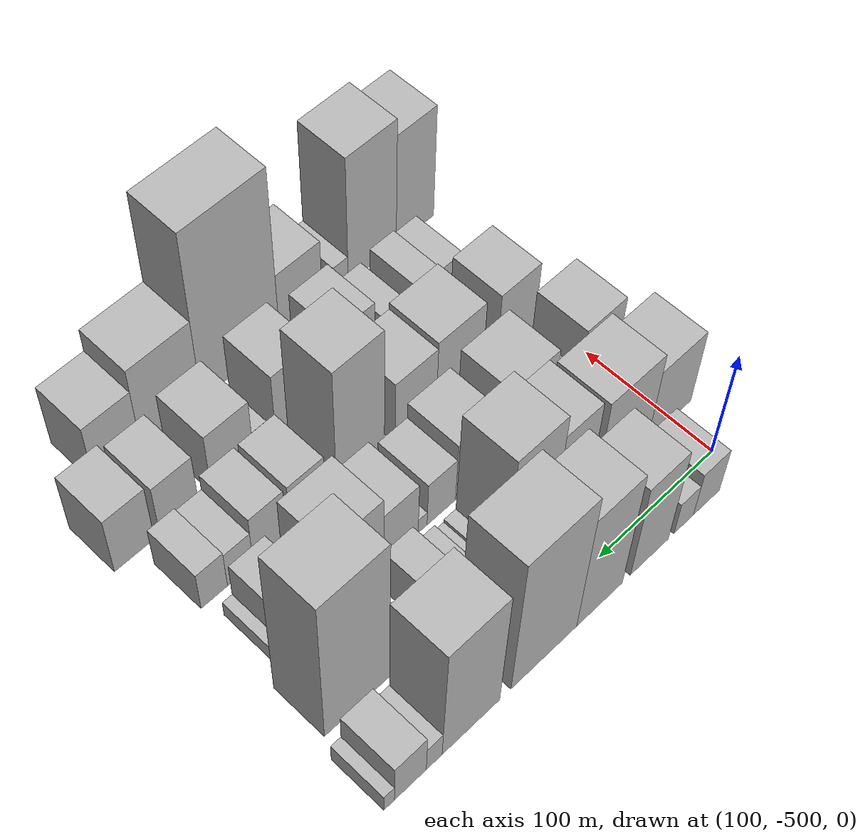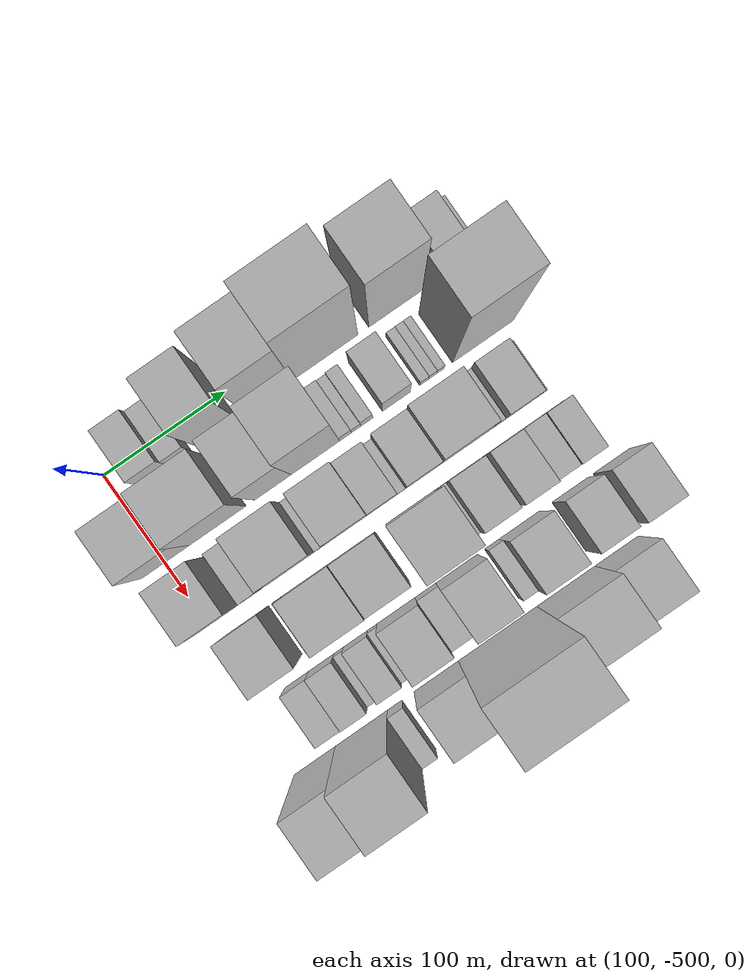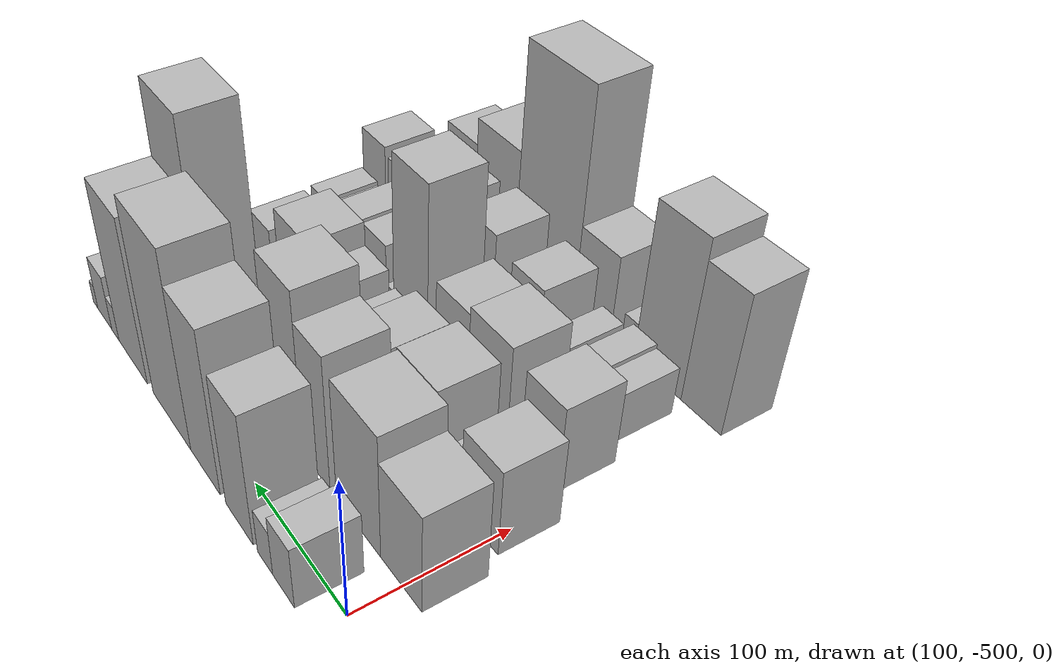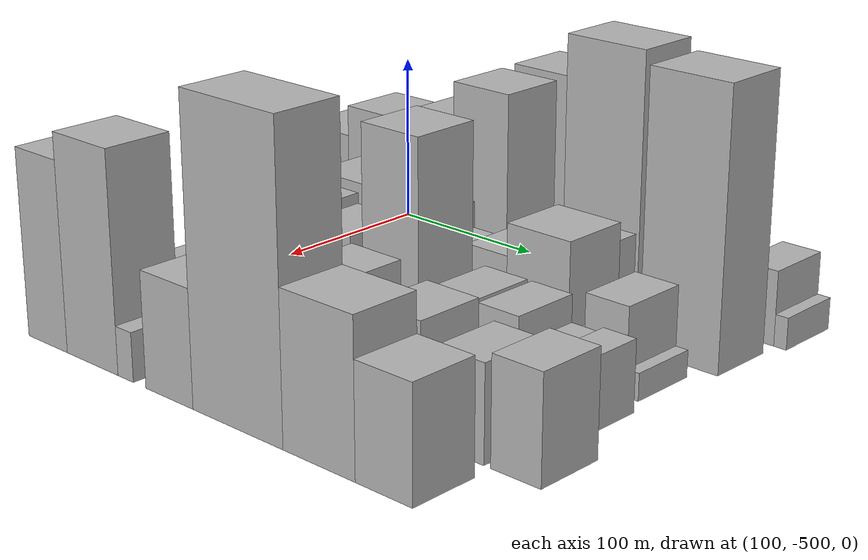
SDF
<sdf version="1.6">
 <world name="default">
  <model name="building_14">
   <static>1</static>
   <pose>100.0000 -470.5793 0 0.000000 0.000000 0.000000</pose>
   <link name="link">
    <pose>0 0 22.50 0 0 0</pose>
    <collision name="collision"><geometry><box><size>40.0000 23.4623 45.0000</size></box></geometry></collision>
    <visual name="visual">
     <cast_shadows>0</cast_shadows>
     <geometry><box><size>40.0000 23.4623 45.0000</size></box></geometry>
     <material>
      <script>
       <uri>model://HANNAS_wall/materials/scripts</uri>
       <uri>model://HANNAS_wall/materials/textures</uri>
       <name>vrc/HANNAS_wall</name>
      </script>
     </material>
    </visual>
   </link>
  </model>
  <model name="building_15">
   <static>1</static>
   <pose>100.0000 -450.2433 0 0.000000 0.000000 0.000000</pose>
   <link name="link">
    <pose>0 0 16.50 0 0 0</pose>
    <collision name="collision"><geometry><box><size>40.0000 17.2098 33.0000</size></box></geometry></collision>
    <visual name="visual">
     <cast_shadows>0</cast_shadows>
     <geometry><box><size>40.0000 17.2098 33.0000</size></box></geometry>
     <material>
      <script>
       <uri>model://HANNAS_wall/materials/scripts</uri>
       <uri>model://HANNAS_wall/materials/textures</uri>
       <name>vrc/HANNAS_wall</name>
      </script>
     </material>
    </visual>
   </link>
  </model>
  <model name="building_16">
   <static>1</static>
   <pose>100.0000 -420.1182 0 0.000000 0.000000 0.000000</pose>
   <link name="link">
    <pose>0 0 48.00 0 0 0</pose>
    <collision name="collision"><geometry><box><size>40.0000 33.0405 96.0000</size></box></geometry></collision>
    <visual name="visual">
     <cast_shadows>0</cast_shadows>
     <geometry><box><size>40.0000 33.0405 96.0000</size></box></geometry>
     <material>
      <script>
       <uri>model://HANNAS_wall/materials/scripts</uri>
       <uri>model://HANNAS_wall/materials/textures</uri>
       <name>vrc/HANNAS_wall</name>
      </script>
     </material>
    </visual>
   </link>
  </model>
  <model name="building_17">
   <static>1</static>
   <pose>100.0000 -377.3497 0 0.000000 0.000000 0.000000</pose>
   <link name="link">
    <pose>0 0 60.00 0 0 0</pose>
    <collision name="collision"><geometry><box><size>40.0000 38.4965 120.0000</size></box></geometry></collision>
    <visual name="visual">
     <cast_shadows>0</cast_shadows>
     <geometry><box><size>40.0000 38.4965 120.0000</size></box></geometry>
     <material>
      <script>
       <uri>model://HANNAS_wall/materials/scripts</uri>
       <uri>model://HANNAS_wall/materials/textures</uri>
       <name>vrc/HANNAS_wall</name>
      </script>
     </material>
    </visual>
   </link>
  </model>
  <model name="building_18">
   <static>1</static>
   <pose>100.0000 -331.2508 0 0.000000 0.000000 0.000000</pose>
   <link name="link">
    <pose>0 0 72.00 0 0 0</pose>
    <collision name="collision"><geometry><box><size>40.0000 53.7013 144.0000</size></box></geometry></collision>
    <visual name="visual">
     <cast_shadows>0</cast_shadows>
     <geometry><box><size>40.0000 53.7013 144.0000</size></box></geometry>
     <material>
      <script>
       <uri>model://HANNAS_wall/materials/scripts</uri>
       <uri>model://HANNAS_wall/materials/textures</uri>
       <name>vrc/HANNAS_wall</name>
      </script>
     </material>
    </visual>
   </link>
  </model>
  <model name="building_19">
   <static>1</static>
   <pose>100.0000 -272.8662 0 0.000000 0.000000 0.000000</pose>
   <link name="link">
    <pose>0 0 61.50 0 0 0</pose>
    <collision name="collision"><geometry><box><size>40.0000 45.0677 123.0000</size></box></geometry></collision>
    <visual name="visual">
     <cast_shadows>0</cast_shadows>
     <geometry><box><size>40.0000 45.0677 123.0000</size></box></geometry>
     <material>
      <script>
       <uri>model://HANNAS_wall/materials/scripts</uri>
       <uri>model://HANNAS_wall/materials/textures</uri>
       <name>vrc/HANNAS_wall</name>
      </script>
     </material>
    </visual>
   </link>
  </model>
  <model name="building_20">
   <static>1</static>
   <pose>100.0000 -244.2768 0 0.000000 0.000000 0.000000</pose>
   <link name="link">
    <pose>0 0 13.50 0 0 0</pose>
    <collision name="collision"><geometry><box><size>40.0000 12.1112 27.0000</size></box></geometry></collision>
    <visual name="visual">
     <cast_shadows>0</cast_shadows>
     <geometry><box><size>40.0000 12.1112 27.0000</size></box></geometry>
     <material>
      <script>
       <uri>model://HANNAS_wall/materials/scripts</uri>
       <uri>model://HANNAS_wall/materials/textures</uri>
       <name>vrc/HANNAS_wall</name>
      </script>
     </material>
    </visual>
   </link>
  </model>
  <model name="building_21">
   <static>1</static>
   <pose>100.0000 -226.2192 0 0.000000 0.000000 0.000000</pose>
   <link name="link">
    <pose>0 0 21.00 0 0 0</pose>
    <collision name="collision"><geometry><box><size>40.0000 24.0040 42.0000</size></box></geometry></collision>
    <visual name="visual">
     <cast_shadows>0</cast_shadows>
     <geometry><box><size>40.0000 24.0040 42.0000</size></box></geometry>
     <material>
      <script>
       <uri>model://HANNAS_wall/materials/scripts</uri>
       <uri>model://HANNAS_wall/materials/textures</uri>
       <name>vrc/HANNAS_wall</name>
      </script>
     </material>
    </visual>
   </link>
  </model>
  <model name="building_22">
   <static>1</static>
   <pose>100.0000 -210.3135 0 0.000000 0.000000 0.000000</pose>
   <link name="link">
    <pose>0 0 9.00 0 0 0</pose>
    <collision name="collision"><geometry><box><size>40.0000 7.8074 18.0000</size></box></geometry></collision>
    <visual name="visual">
     <cast_shadows>0</cast_shadows>
     <geometry><box><size>40.0000 7.8074 18.0000</size></box></geometry>
     <material>
      <script>
       <uri>model://HANNAS_wall/materials/scripts</uri>
       <uri>model://HANNAS_wall/materials/textures</uri>
       <name>vrc/HANNAS_wall</name>
      </script>
     </material>
    </visual>
   </link>
  </model>
  <model name="building_62">
   <static>1</static>
   <pose>152.0000 -498.5605 0 0.000000 0.000000 0.000000</pose>
   <link name="link">
    <pose>0 0 36.00 0 0 0</pose>
    <collision name="collision"><geometry><box><size>40.0000 39.4676 72.0000</size></box></geometry></collision>
    <visual name="visual">
     <cast_shadows>0</cast_shadows>
     <geometry><box><size>40.0000 39.4676 72.0000</size></box></geometry>
     <material>
      <script>
       <uri>model://HANNAS_wall/materials/scripts</uri>
       <uri>model://HANNAS_wall/materials/textures</uri>
       <name>vrc/HANNAS_wall</name>
      </script>
     </material>
    </visual>
   </link>
  </model>
  <model name="building_63">
   <static>1</static>
   <pose>152.0000 -455.6857 0 0.000000 0.000000 0.000000</pose>
   <link name="link">
    <pose>0 0 45.00 0 0 0</pose>
    <collision name="collision"><geometry><box><size>40.0000 46.2821 90.0000</size></box></geometry></collision>
    <visual name="visual">
     <cast_shadows>0</cast_shadows>
     <geometry><box><size>40.0000 46.2821 90.0000</size></box></geometry>
     <material>
      <script>
       <uri>model://HANNAS_wall/materials/scripts</uri>
       <uri>model://HANNAS_wall/materials/textures</uri>
       <name>vrc/HANNAS_wall</name>
      </script>
     </material>
    </visual>
   </link>
  </model>
  <model name="building_64">
   <static>1</static>
   <pose>152.0000 -410.3827 0 0.000000 0.000000 0.000000</pose>
   <link name="link">
    <pose>0 0 49.50 0 0 0</pose>
    <collision name="collision"><geometry><box><size>40.0000 30.3238 99.0000</size></box></geometry></collision>
    <visual name="visual">
     <cast_shadows>0</cast_shadows>
     <geometry><box><size>40.0000 30.3238 99.0000</size></box></geometry>
     <material>
      <script>
       <uri>model://HANNAS_wall/materials/scripts</uri>
       <uri>model://HANNAS_wall/materials/textures</uri>
       <name>vrc/HANNAS_wall</name>
      </script>
     </material>
    </visual>
   </link>
  </model>
  <model name="building_65">
   <static>1</static>
   <pose>152.0000 -375.3667 0 0.000000 0.000000 0.000000</pose>
   <link name="link">
    <pose>0 0 60.00 0 0 0</pose>
    <collision name="collision"><geometry><box><size>40.0000 39.7083 120.0000</size></box></geometry></collision>
    <visual name="visual">
     <cast_shadows>0</cast_shadows>
     <geometry><box><size>40.0000 39.7083 120.0000</size></box></geometry>
     <material>
      <script>
       <uri>model://HANNAS_wall/materials/scripts</uri>
       <uri>model://HANNAS_wall/materials/textures</uri>
       <name>vrc/HANNAS_wall</name>
      </script>
     </material>
    </visual>
   </link>
  </model>
  <model name="building_66">
   <static>1</static>
   <pose>152.0000 -350.6335 0 0.000000 0.000000 0.000000</pose>
   <link name="link">
    <pose>0 0 10.50 0 0 0</pose>
    <collision name="collision"><geometry><box><size>40.0000 9.7579 21.0000</size></box></geometry></collision>
    <visual name="visual">
     <cast_shadows>0</cast_shadows>
     <geometry><box><size>40.0000 9.7579 21.0000</size></box></geometry>
     <material>
      <script>
       <uri>model://HANNAS_wall/materials/scripts</uri>
       <uri>model://HANNAS_wall/materials/textures</uri>
       <name>vrc/HANNAS_wall</name>
      </script>
     </material>
    </visual>
   </link>
  </model>
  <model name="building_67">
   <static>1</static>
   <pose>152.0000 -341.9196 0 0.000000 0.000000 0.000000</pose>
   <link name="link">
    <pose>0 0 9.00 0 0 0</pose>
    <collision name="collision"><geometry><box><size>40.0000 7.6698 18.0000</size></box></geometry></collision>
    <visual name="visual">
     <cast_shadows>0</cast_shadows>
     <geometry><box><size>40.0000 7.6698 18.0000</size></box></geometry>
     <material>
      <script>
       <uri>model://HANNAS_wall/materials/scripts</uri>
       <uri>model://HANNAS_wall/materials/textures</uri>
       <name>vrc/HANNAS_wall</name>
      </script>
     </material>
    </visual>
   </link>
  </model>
  <model name="building_68">
   <static>1</static>
   <pose>152.0000 -333.2025 0 0.000000 0.000000 0.000000</pose>
   <link name="link">
    <pose>0 0 12.00 0 0 0</pose>
    <collision name="collision"><geometry><box><size>40.0000 9.7646 24.0000</size></box></geometry></collision>
    <visual name="visual">
     <cast_shadows>0</cast_shadows>
     <geometry><box><size>40.0000 9.7646 24.0000</size></box></geometry>
     <material>
      <script>
       <uri>model://HANNAS_wall/materials/scripts</uri>
       <uri>model://HANNAS_wall/materials/textures</uri>
       <name>vrc/HANNAS_wall</name>
      </script>
     </material>
    </visual>
   </link>
  </model>
  <model name="building_69">
   <static>1</static>
   <pose>152.0000 -308.9784 0 0.000000 0.000000 0.000000</pose>
   <link name="link">
    <pose>0 0 22.50 0 0 0</pose>
    <collision name="collision"><geometry><box><size>40.0000 22.6835 45.0000</size></box></geometry></collision>
    <visual name="visual">
     <cast_shadows>0</cast_shadows>
     <geometry><box><size>40.0000 22.6835 45.0000</size></box></geometry>
     <material>
      <script>
       <uri>model://HANNAS_wall/materials/scripts</uri>
       <uri>model://HANNAS_wall/materials/textures</uri>
       <name>vrc/HANNAS_wall</name>
      </script>
     </material>
    </visual>
   </link>
  </model>
  <model name="building_70">
   <static>1</static>
   <pose>152.0000 -286.0356 0 0.000000 0.000000 0.000000</pose>
   <link name="link">
    <pose>0 0 7.50 0 0 0</pose>
    <collision name="collision"><geometry><box><size>40.0000 7.2021 15.0000</size></box></geometry></collision>
    <visual name="visual">
     <cast_shadows>0</cast_shadows>
     <geometry><box><size>40.0000 7.2021 15.0000</size></box></geometry>
     <material>
      <script>
       <uri>model://HANNAS_wall/materials/scripts</uri>
       <uri>model://HANNAS_wall/materials/textures</uri>
       <name>vrc/HANNAS_wall</name>
      </script>
     </material>
    </visual>
   </link>
  </model>
  <model name="building_71">
   <static>1</static>
   <pose>152.0000 -279.1113 0 0.000000 0.000000 0.000000</pose>
   <link name="link">
    <pose>0 0 7.50 0 0 0</pose>
    <collision name="collision"><geometry><box><size>40.0000 6.6466 15.0000</size></box></geometry></collision>
    <visual name="visual">
     <cast_shadows>0</cast_shadows>
     <geometry><box><size>40.0000 6.6466 15.0000</size></box></geometry>
     <material>
      <script>
       <uri>model://HANNAS_wall/materials/scripts</uri>
       <uri>model://HANNAS_wall/materials/textures</uri>
       <name>vrc/HANNAS_wall</name>
      </script>
     </material>
    </visual>
   </link>
  </model>
  <model name="building_72">
   <static>1</static>
   <pose>152.0000 -272.7433 0 0.000000 0.000000 0.000000</pose>
   <link name="link">
    <pose>0 0 7.50 0 0 0</pose>
    <collision name="collision"><geometry><box><size>40.0000 6.0894 15.0000</size></box></geometry></collision>
    <visual name="visual">
     <cast_shadows>0</cast_shadows>
     <geometry><box><size>40.0000 6.0894 15.0000</size></box></geometry>
     <material>
      <script>
       <uri>model://HANNAS_wall/materials/scripts</uri>
       <uri>model://HANNAS_wall/materials/textures</uri>
       <name>vrc/HANNAS_wall</name>
      </script>
     </material>
    </visual>
   </link>
  </model>
  <model name="building_73">
   <static>1</static>
   <pose>152.0000 -237.7796 0 0.000000 0.000000 0.000000</pose>
   <link name="link">
    <pose>0 0 76.50 0 0 0</pose>
    <collision name="collision"><geometry><box><size>40.0000 49.8379 153.0000</size></box></geometry></collision>
    <visual name="visual">
     <cast_shadows>0</cast_shadows>
     <geometry><box><size>40.0000 49.8379 153.0000</size></box></geometry>
     <material>
      <script>
       <uri>model://HANNAS_wall/materials/scripts</uri>
       <uri>model://HANNAS_wall/materials/textures</uri>
       <name>vrc/HANNAS_wall</name>
      </script>
     </material>
    </visual>
   </link>
  </model>
  <model name="building_116">
   <static>1</static>
   <pose>204.0000 -492.7894 0 0.000000 0.000000 0.000000</pose>
   <link name="link">
    <pose>0 0 31.50 0 0 0</pose>
    <collision name="collision"><geometry><box><size>40.0000 34.4052 63.0000</size></box></geometry></collision>
    <visual name="visual">
     <cast_shadows>0</cast_shadows>
     <geometry><box><size>40.0000 34.4052 63.0000</size></box></geometry>
     <material>
      <script>
       <uri>model://HANNAS_wall/materials/scripts</uri>
       <uri>model://HANNAS_wall/materials/textures</uri>
       <name>vrc/HANNAS_wall</name>
      </script>
     </material>
    </visual>
   </link>
  </model>
  <model name="building_117">
   <static>1</static>
   <pose>204.0000 -463.0438 0 0.000000 0.000000 0.000000</pose>
   <link name="link">
    <pose>0 0 15.00 0 0 0</pose>
    <collision name="collision"><geometry><box><size>40.0000 15.0861 30.0000</size></box></geometry></collision>
    <visual name="visual">
     <cast_shadows>0</cast_shadows>
     <geometry><box><size>40.0000 15.0861 30.0000</size></box></geometry>
     <material>
      <script>
       <uri>model://HANNAS_wall/materials/scripts</uri>
       <uri>model://HANNAS_wall/materials/textures</uri>
       <name>vrc/HANNAS_wall</name>
      </script>
     </material>
    </visual>
   </link>
  </model>
  <model name="building_118">
   <static>1</static>
   <pose>204.0000 -431.4433 0 0.000000 0.000000 0.000000</pose>
   <link name="link">
    <pose>0 0 34.50 0 0 0</pose>
    <collision name="collision"><geometry><box><size>40.0000 40.1149 69.0000</size></box></geometry></collision>
    <visual name="visual">
     <cast_shadows>0</cast_shadows>
     <geometry><box><size>40.0000 40.1149 69.0000</size></box></geometry>
     <material>
      <script>
       <uri>model://HANNAS_wall/materials/scripts</uri>
       <uri>model://HANNAS_wall/materials/textures</uri>
       <name>vrc/HANNAS_wall</name>
      </script>
     </material>
    </visual>
   </link>
  </model>
  <model name="building_119">
   <static>1</static>
   <pose>204.0000 -407.1718 0 0.000000 0.000000 0.000000</pose>
   <link name="link">
    <pose>0 0 9.00 0 0 0</pose>
    <collision name="collision"><geometry><box><size>40.0000 8.4279 18.0000</size></box></geometry></collision>
    <visual name="visual">
     <cast_shadows>0</cast_shadows>
     <geometry><box><size>40.0000 8.4279 18.0000</size></box></geometry>
     <material>
      <script>
       <uri>model://HANNAS_wall/materials/scripts</uri>
       <uri>model://HANNAS_wall/materials/textures</uri>
       <name>vrc/HANNAS_wall</name>
      </script>
     </material>
    </visual>
   </link>
  </model>
  <model name="building_120">
   <static>1</static>
   <pose>204.0000 -385.6844 0 0.000000 0.000000 0.000000</pose>
   <link name="link">
    <pose>0 0 30.00 0 0 0</pose>
    <collision name="collision"><geometry><box><size>40.0000 34.5470 60.0000</size></box></geometry></collision>
    <visual name="visual">
     <cast_shadows>0</cast_shadows>
     <geometry><box><size>40.0000 34.5470 60.0000</size></box></geometry>
     <material>
      <script>
       <uri>model://HANNAS_wall/materials/scripts</uri>
       <uri>model://HANNAS_wall/materials/textures</uri>
       <name>vrc/HANNAS_wall</name>
      </script>
     </material>
    </visual>
   </link>
  </model>
  <model name="building_121">
   <static>1</static>
   <pose>204.0000 -356.6368 0 0.000000 0.000000 0.000000</pose>
   <link name="link">
    <pose>0 0 22.50 0 0 0</pose>
    <collision name="collision"><geometry><box><size>40.0000 23.5482 45.0000</size></box></geometry></collision>
    <visual name="visual">
     <cast_shadows>0</cast_shadows>
     <geometry><box><size>40.0000 23.5482 45.0000</size></box></geometry>
     <material>
      <script>
       <uri>model://HANNAS_wall/materials/scripts</uri>
       <uri>model://HANNAS_wall/materials/textures</uri>
       <name>vrc/HANNAS_wall</name>
      </script>
     </material>
    </visual>
   </link>
  </model>
  <model name="building_122">
   <static>1</static>
   <pose>204.0000 -341.2113 0 0.000000 0.000000 0.000000</pose>
   <link name="link">
    <pose>0 0 7.50 0 0 0</pose>
    <collision name="collision"><geometry><box><size>40.0000 7.3028 15.0000</size></box></geometry></collision>
    <visual name="visual">
     <cast_shadows>0</cast_shadows>
     <geometry><box><size>40.0000 7.3028 15.0000</size></box></geometry>
     <material>
      <script>
       <uri>model://HANNAS_wall/materials/scripts</uri>
       <uri>model://HANNAS_wall/materials/textures</uri>
       <name>vrc/HANNAS_wall</name>
      </script>
     </material>
    </visual>
   </link>
  </model>
  <model name="building_123">
   <static>1</static>
   <pose>204.0000 -323.6650 0 0.000000 0.000000 0.000000</pose>
   <link name="link">
    <pose>0 0 27.00 0 0 0</pose>
    <collision name="collision"><geometry><box><size>40.0000 27.7899 54.0000</size></box></geometry></collision>
    <visual name="visual">
     <cast_shadows>0</cast_shadows>
     <geometry><box><size>40.0000 27.7899 54.0000</size></box></geometry>
     <material>
      <script>
       <uri>model://HANNAS_wall/materials/scripts</uri>
       <uri>model://HANNAS_wall/materials/textures</uri>
       <name>vrc/HANNAS_wall</name>
      </script>
     </material>
    </visual>
   </link>
  </model>
  <model name="building_124">
   <static>1</static>
   <pose>204.0000 -289.0893 0 0.000000 0.000000 0.000000</pose>
   <link name="link">
    <pose>0 0 36.00 0 0 0</pose>
    <collision name="collision"><geometry><box><size>40.0000 41.3615 72.0000</size></box></geometry></collision>
    <visual name="visual">
     <cast_shadows>0</cast_shadows>
     <geometry><box><size>40.0000 41.3615 72.0000</size></box></geometry>
     <material>
      <script>
       <uri>model://HANNAS_wall/materials/scripts</uri>
       <uri>model://HANNAS_wall/materials/textures</uri>
       <name>vrc/HANNAS_wall</name>
      </script>
     </material>
    </visual>
   </link>
  </model>
  <model name="building_125">
   <static>1</static>
   <pose>204.0000 -263.1681 0 0.000000 0.000000 0.000000</pose>
   <link name="link">
    <pose>0 0 12.00 0 0 0</pose>
    <collision name="collision"><geometry><box><size>40.0000 10.4809 24.0000</size></box></geometry></collision>
    <visual name="visual">
     <cast_shadows>0</cast_shadows>
     <geometry><box><size>40.0000 10.4809 24.0000</size></box></geometry>
     <material>
      <script>
       <uri>model://HANNAS_wall/materials/scripts</uri>
       <uri>model://HANNAS_wall/materials/textures</uri>
       <name>vrc/HANNAS_wall</name>
      </script>
     </material>
    </visual>
   </link>
  </model>
  <model name="building_126">
   <static>1</static>
   <pose>204.0000 -244.3895 0 0.000000 0.000000 0.000000</pose>
   <link name="link">
    <pose>0 0 24.00 0 0 0</pose>
    <collision name="collision"><geometry><box><size>40.0000 27.0763 48.0000</size></box></geometry></collision>
    <visual name="visual">
     <cast_shadows>0</cast_shadows>
     <geometry><box><size>40.0000 27.0763 48.0000</size></box></geometry>
     <material>
      <script>
       <uri>model://HANNAS_wall/materials/scripts</uri>
       <uri>model://HANNAS_wall/materials/textures</uri>
       <name>vrc/HANNAS_wall</name>
      </script>
     </material>
    </visual>
   </link>
  </model>
  <model name="building_127">
   <static>1</static>
   <pose>204.0000 -227.1073 0 0.000000 0.000000 0.000000</pose>
   <link name="link">
    <pose>0 0 7.50 0 0 0</pose>
    <collision name="collision"><geometry><box><size>40.0000 7.4881 15.0000</size></box></geometry></collision>
    <visual name="visual">
     <cast_shadows>0</cast_shadows>
     <geometry><box><size>40.0000 7.4881 15.0000</size></box></geometry>
     <material>
      <script>
       <uri>model://HANNAS_wall/materials/scripts</uri>
       <uri>model://HANNAS_wall/materials/textures</uri>
       <name>vrc/HANNAS_wall</name>
      </script>
     </material>
    </visual>
   </link>
  </model>
  <model name="building_169">
   <static>1</static>
   <pose>256.0000 -475.7329 0 0.000000 0.000000 0.000000</pose>
   <link name="link">
    <pose>0 0 31.50 0 0 0</pose>
    <collision name="collision"><geometry><box><size>40.0000 34.1055 63.0000</size></box></geometry></collision>
    <visual name="visual">
     <cast_shadows>0</cast_shadows>
     <geometry><box><size>40.0000 34.1055 63.0000</size></box></geometry>
     <material>
      <script>
       <uri>model://HANNAS_wall/materials/scripts</uri>
       <uri>model://HANNAS_wall/materials/textures</uri>
       <name>vrc/HANNAS_wall</name>
      </script>
     </material>
    </visual>
   </link>
  </model>
  <model name="building_170">
   <static>1</static>
   <pose>256.0000 -449.7583 0 0.000000 0.000000 0.000000</pose>
   <link name="link">
    <pose>0 0 9.00 0 0 0</pose>
    <collision name="collision"><geometry><box><size>40.0000 7.8437 18.0000</size></box></geometry></collision>
    <visual name="visual">
     <cast_shadows>0</cast_shadows>
     <geometry><box><size>40.0000 7.8437 18.0000</size></box></geometry>
     <material>
      <script>
       <uri>model://HANNAS_wall/materials/scripts</uri>
       <uri>model://HANNAS_wall/materials/textures</uri>
       <name>vrc/HANNAS_wall</name>
      </script>
     </material>
    </visual>
   </link>
  </model>
  <model name="building_171">
   <static>1</static>
   <pose>256.0000 -425.7415 0 0.000000 0.000000 0.000000</pose>
   <link name="link">
    <pose>0 0 34.50 0 0 0</pose>
    <collision name="collision"><geometry><box><size>40.0000 40.1898 69.0000</size></box></geometry></collision>
    <visual name="visual">
     <cast_shadows>0</cast_shadows>
     <geometry><box><size>40.0000 40.1898 69.0000</size></box></geometry>
     <material>
      <script>
       <uri>model://HANNAS_wall/materials/scripts</uri>
       <uri>model://HANNAS_wall/materials/textures</uri>
       <name>vrc/HANNAS_wall</name>
      </script>
     </material>
    </visual>
   </link>
  </model>
  <model name="building_172">
   <static>1</static>
   <pose>256.0000 -388.2916 0 0.000000 0.000000 0.000000</pose>
   <link name="link">
    <pose>0 0 31.50 0 0 0</pose>
    <collision name="collision"><geometry><box><size>40.0000 34.7100 63.0000</size></box></geometry></collision>
    <visual name="visual">
     <cast_shadows>0</cast_shadows>
     <geometry><box><size>40.0000 34.7100 63.0000</size></box></geometry>
     <material>
      <script>
       <uri>model://HANNAS_wall/materials/scripts</uri>
       <uri>model://HANNAS_wall/materials/textures</uri>
       <name>vrc/HANNAS_wall</name>
      </script>
     </material>
    </visual>
   </link>
  </model>
  <model name="building_173">
   <static>1</static>
   <pose>256.0000 -342.3351 0 0.000000 0.000000 0.000000</pose>
   <link name="link">
    <pose>0 0 63.00 0 0 0</pose>
    <collision name="collision"><geometry><box><size>40.0000 39.2031 126.0000</size></box></geometry></collision>
    <visual name="visual">
     <cast_shadows>0</cast_shadows>
     <geometry><box><size>40.0000 39.2031 126.0000</size></box></geometry>
     <material>
      <script>
       <uri>model://HANNAS_wall/materials/scripts</uri>
       <uri>model://HANNAS_wall/materials/textures</uri>
       <name>vrc/HANNAS_wall</name>
      </script>
     </material>
    </visual>
   </link>
  </model>
  <model name="building_174">
   <static>1</static>
   <pose>256.0000 -318.3055 0 0.000000 0.000000 0.000000</pose>
   <link name="link">
    <pose>0 0 10.50 0 0 0</pose>
    <collision name="collision"><geometry><box><size>40.0000 8.8560 21.0000</size></box></geometry></collision>
    <visual name="visual">
     <cast_shadows>0</cast_shadows>
     <geometry><box><size>40.0000 8.8560 21.0000</size></box></geometry>
     <material>
      <script>
       <uri>model://HANNAS_wall/materials/scripts</uri>
       <uri>model://HANNAS_wall/materials/textures</uri>
       <name>vrc/HANNAS_wall</name>
      </script>
     </material>
    </visual>
   </link>
  </model>
  <model name="building_175">
   <static>1</static>
   <pose>256.0000 -299.7712 0 0.000000 0.000000 0.000000</pose>
   <link name="link">
    <pose>0 0 25.50 0 0 0</pose>
    <collision name="collision"><geometry><box><size>40.0000 28.2126 51.0000</size></box></geometry></collision>
    <visual name="visual">
     <cast_shadows>0</cast_shadows>
     <geometry><box><size>40.0000 28.2126 51.0000</size></box></geometry>
     <material>
      <script>
       <uri>model://HANNAS_wall/materials/scripts</uri>
       <uri>model://HANNAS_wall/materials/textures</uri>
       <name>vrc/HANNAS_wall</name>
      </script>
     </material>
    </visual>
   </link>
  </model>
  <model name="building_176">
   <static>1</static>
   <pose>256.0000 -269.6560 0 0.000000 0.000000 0.000000</pose>
   <link name="link">
    <pose>0 0 25.50 0 0 0</pose>
    <collision name="collision"><geometry><box><size>40.0000 26.0177 51.0000</size></box></geometry></collision>
    <visual name="visual">
     <cast_shadows>0</cast_shadows>
     <geometry><box><size>40.0000 26.0177 51.0000</size></box></geometry>
     <material>
      <script>
       <uri>model://HANNAS_wall/materials/scripts</uri>
       <uri>model://HANNAS_wall/materials/textures</uri>
       <name>vrc/HANNAS_wall</name>
      </script>
     </material>
    </visual>
   </link>
  </model>
  <model name="building_177">
   <static>1</static>
   <pose>256.0000 -246.7522 0 0.000000 0.000000 0.000000</pose>
   <link name="link">
    <pose>0 0 18.00 0 0 0</pose>
    <collision name="collision"><geometry><box><size>40.0000 19.7899 36.0000</size></box></geometry></collision>
    <visual name="visual">
     <cast_shadows>0</cast_shadows>
     <geometry><box><size>40.0000 19.7899 36.0000</size></box></geometry>
     <material>
      <script>
       <uri>model://HANNAS_wall/materials/scripts</uri>
       <uri>model://HANNAS_wall/materials/textures</uri>
       <name>vrc/HANNAS_wall</name>
      </script>
     </material>
    </visual>
   </link>
  </model>
  <model name="building_178">
   <static>1</static>
   <pose>256.0000 -226.8342 0 0.000000 0.000000 0.000000</pose>
   <link name="link">
    <pose>0 0 19.50 0 0 0</pose>
    <collision name="collision"><geometry><box><size>40.0000 20.0461 39.0000</size></box></geometry></collision>
    <visual name="visual">
     <cast_shadows>0</cast_shadows>
     <geometry><box><size>40.0000 20.0461 39.0000</size></box></geometry>
     <material>
      <script>
       <uri>model://HANNAS_wall/materials/scripts</uri>
       <uri>model://HANNAS_wall/materials/textures</uri>
       <name>vrc/HANNAS_wall</name>
      </script>
     </material>
    </visual>
   </link>
  </model>
  <model name="building_218">
   <static>1</static>
   <pose>308.0000 -471.3192 0 0.000000 0.000000 0.000000</pose>
   <link name="link">
    <pose>0 0 18.00 0 0 0</pose>
    <collision name="collision"><geometry><box><size>40.0000 19.6863 36.0000</size></box></geometry></collision>
    <visual name="visual">
     <cast_shadows>0</cast_shadows>
     <geometry><box><size>40.0000 19.6863 36.0000</size></box></geometry>
     <material>
      <script>
       <uri>model://HANNAS_wall/materials/scripts</uri>
       <uri>model://HANNAS_wall/materials/textures</uri>
       <name>vrc/HANNAS_wall</name>
      </script>
     </material>
    </visual>
   </link>
  </model>
  <model name="building_219">
   <static>1</static>
   <pose>308.0000 -451.1763 0 0.000000 0.000000 0.000000</pose>
   <link name="link">
    <pose>0 0 19.50 0 0 0</pose>
    <collision name="collision"><geometry><box><size>40.0000 20.5996 39.0000</size></box></geometry></collision>
    <visual name="visual">
     <cast_shadows>0</cast_shadows>
     <geometry><box><size>40.0000 20.5996 39.0000</size></box></geometry>
     <material>
      <script>
       <uri>model://HANNAS_wall/materials/scripts</uri>
       <uri>model://HANNAS_wall/materials/textures</uri>
       <name>vrc/HANNAS_wall</name>
      </script>
     </material>
    </visual>
   </link>
  </model>
  <model name="building_220">
   <static>1</static>
   <pose>308.0000 -436.9733 0 0.000000 0.000000 0.000000</pose>
   <link name="link">
    <pose>0 0 9.00 0 0 0</pose>
    <collision name="collision"><geometry><box><size>40.0000 7.8064 18.0000</size></box></geometry></collision>
    <visual name="visual">
     <cast_shadows>0</cast_shadows>
     <geometry><box><size>40.0000 7.8064 18.0000</size></box></geometry>
     <material>
      <script>
       <uri>model://HANNAS_wall/materials/scripts</uri>
       <uri>model://HANNAS_wall/materials/textures</uri>
       <name>vrc/HANNAS_wall</name>
      </script>
     </material>
    </visual>
   </link>
  </model>
  <model name="building_221">
   <static>1</static>
   <pose>308.0000 -423.2968 0 0.000000 0.000000 0.000000</pose>
   <link name="link">
    <pose>0 0 16.50 0 0 0</pose>
    <collision name="collision"><geometry><box><size>40.0000 19.5466 33.0000</size></box></geometry></collision>
    <visual name="visual">
     <cast_shadows>0</cast_shadows>
     <geometry><box><size>40.0000 19.5466 33.0000</size></box></geometry>
     <material>
      <script>
       <uri>model://HANNAS_wall/materials/scripts</uri>
       <uri>model://HANNAS_wall/materials/textures</uri>
       <name>vrc/HANNAS_wall</name>
      </script>
     </material>
    </visual>
   </link>
  </model>
  <model name="building_222">
   <static>1</static>
   <pose>308.0000 -409.6398 0 0.000000 0.000000 0.000000</pose>
   <link name="link">
    <pose>0 0 9.00 0 0 0</pose>
    <collision name="collision"><geometry><box><size>40.0000 7.7675 18.0000</size></box></geometry></collision>
    <visual name="visual">
     <cast_shadows>0</cast_shadows>
     <geometry><box><size>40.0000 7.7675 18.0000</size></box></geometry>
     <material>
      <script>
       <uri>model://HANNAS_wall/materials/scripts</uri>
       <uri>model://HANNAS_wall/materials/textures</uri>
       <name>vrc/HANNAS_wall</name>
      </script>
     </material>
    </visual>
   </link>
  </model>
  <model name="building_223">
   <static>1</static>
   <pose>308.0000 -389.9407 0 0.000000 0.000000 0.000000</pose>
   <link name="link">
    <pose>0 0 28.50 0 0 0</pose>
    <collision name="collision"><geometry><box><size>40.0000 31.6306 57.0000</size></box></geometry></collision>
    <visual name="visual">
     <cast_shadows>0</cast_shadows>
     <geometry><box><size>40.0000 31.6306 57.0000</size></box></geometry>
     <material>
      <script>
       <uri>model://HANNAS_wall/materials/scripts</uri>
       <uri>model://HANNAS_wall/materials/textures</uri>
       <name>vrc/HANNAS_wall</name>
      </script>
     </material>
    </visual>
   </link>
  </model>
  <model name="building_224">
   <static>1</static>
   <pose>308.0000 -365.6707 0 0.000000 0.000000 0.000000</pose>
   <link name="link">
    <pose>0 0 15.00 0 0 0</pose>
    <collision name="collision"><geometry><box><size>40.0000 16.9094 30.0000</size></box></geometry></collision>
    <visual name="visual">
     <cast_shadows>0</cast_shadows>
     <geometry><box><size>40.0000 16.9094 30.0000</size></box></geometry>
     <material>
      <script>
       <uri>model://HANNAS_wall/materials/scripts</uri>
       <uri>model://HANNAS_wall/materials/textures</uri>
       <name>vrc/HANNAS_wall</name>
      </script>
     </material>
    </visual>
   </link>
  </model>
  <model name="building_225">
   <static>1</static>
   <pose>308.0000 -340.0623 0 0.000000 0.000000 0.000000</pose>
   <link name="link">
    <pose>0 0 33.00 0 0 0</pose>
    <collision name="collision"><geometry><box><size>40.0000 34.3075 66.0000</size></box></geometry></collision>
    <visual name="visual">
     <cast_shadows>0</cast_shadows>
     <geometry><box><size>40.0000 34.3075 66.0000</size></box></geometry>
     <material>
      <script>
       <uri>model://HANNAS_wall/materials/scripts</uri>
       <uri>model://HANNAS_wall/materials/textures</uri>
       <name>vrc/HANNAS_wall</name>
      </script>
     </material>
    </visual>
   </link>
  </model>
  <model name="building_226">
   <static>1</static>
   <pose>308.0000 -311.0226 0 0.000000 0.000000 0.000000</pose>
   <link name="link">
    <pose>0 0 13.50 0 0 0</pose>
    <collision name="collision"><geometry><box><size>40.0000 11.7720 27.0000</size></box></geometry></collision>
    <visual name="visual">
     <cast_shadows>0</cast_shadows>
     <geometry><box><size>40.0000 11.7720 27.0000</size></box></geometry>
     <material>
      <script>
       <uri>model://HANNAS_wall/materials/scripts</uri>
       <uri>model://HANNAS_wall/materials/textures</uri>
       <name>vrc/HANNAS_wall</name>
      </script>
     </material>
    </visual>
   </link>
  </model>
  <model name="building_227">
   <static>1</static>
   <pose>308.0000 -288.2669 0 0.000000 0.000000 0.000000</pose>
   <link name="link">
    <pose>0 0 30.00 0 0 0</pose>
    <collision name="collision"><geometry><box><size>40.0000 33.7393 60.0000</size></box></geometry></collision>
    <visual name="visual">
     <cast_shadows>0</cast_shadows>
     <geometry><box><size>40.0000 33.7393 60.0000</size></box></geometry>
     <material>
      <script>
       <uri>model://HANNAS_wall/materials/scripts</uri>
       <uri>model://HANNAS_wall/materials/textures</uri>
       <name>vrc/HANNAS_wall</name>
      </script>
     </material>
    </visual>
   </link>
  </model>
  <model name="building_228">
   <static>1</static>
   <pose>308.0000 -246.4530 0 0.000000 0.000000 0.000000</pose>
   <link name="link">
    <pose>0 0 25.50 0 0 0</pose>
    <collision name="collision"><geometry><box><size>40.0000 29.8887 51.0000</size></box></geometry></collision>
    <visual name="visual">
     <cast_shadows>0</cast_shadows>
     <geometry><box><size>40.0000 29.8887 51.0000</size></box></geometry>
     <material>
      <script>
       <uri>model://HANNAS_wall/materials/scripts</uri>
       <uri>model://HANNAS_wall/materials/textures</uri>
       <name>vrc/HANNAS_wall</name>
      </script>
     </material>
    </visual>
   </link>
  </model>
  <model name="building_229">
   <static>1</static>
   <pose>308.0000 -212.4474 0 0.000000 0.000000 0.000000</pose>
   <link name="link">
    <pose>0 0 28.50 0 0 0</pose>
    <collision name="collision"><geometry><box><size>40.0000 30.1225 57.0000</size></box></geometry></collision>
    <visual name="visual">
     <cast_shadows>0</cast_shadows>
     <geometry><box><size>40.0000 30.1225 57.0000</size></box></geometry>
     <material>
      <script>
       <uri>model://HANNAS_wall/materials/scripts</uri>
       <uri>model://HANNAS_wall/materials/textures</uri>
       <name>vrc/HANNAS_wall</name>
      </script>
     </material>
    </visual>
   </link>
  </model>
  <model name="building_274">
   <static>1</static>
   <pose>360.0000 -492.8565 0 0.000000 0.000000 0.000000</pose>
   <link name="link">
    <pose>0 0 52.50 0 0 0</pose>
    <collision name="collision"><geometry><box><size>40.0000 33.7903 105.0000</size></box></geometry></collision>
    <visual name="visual">
     <cast_shadows>0</cast_shadows>
     <geometry><box><size>40.0000 33.7903 105.0000</size></box></geometry>
     <material>
      <script>
       <uri>model://HANNAS_wall/materials/scripts</uri>
       <uri>model://HANNAS_wall/materials/textures</uri>
       <name>vrc/HANNAS_wall</name>
      </script>
     </material>
    </visual>
   </link>
  </model>
  <model name="building_275">
   <static>1</static>
   <pose>360.0000 -454.6950 0 0.000000 0.000000 0.000000</pose>
   <link name="link">
    <pose>0 0 60.00 0 0 0</pose>
    <collision name="collision"><geometry><box><size>40.0000 42.5326 120.0000</size></box></geometry></collision>
    <visual name="visual">
     <cast_shadows>0</cast_shadows>
     <geometry><box><size>40.0000 42.5326 120.0000</size></box></geometry>
     <material>
      <script>
       <uri>model://HANNAS_wall/materials/scripts</uri>
       <uri>model://HANNAS_wall/materials/textures</uri>
       <name>vrc/HANNAS_wall</name>
      </script>
     </material>
    </visual>
   </link>
  </model>
  <model name="building_276">
   <static>1</static>
   <pose>360.0000 -427.2458 0 0.000000 0.000000 0.000000</pose>
   <link name="link">
    <pose>0 0 13.50 0 0 0</pose>
    <collision name="collision"><geometry><box><size>40.0000 12.3660 27.0000</size></box></geometry></collision>
    <visual name="visual">
     <cast_shadows>0</cast_shadows>
     <geometry><box><size>40.0000 12.3660 27.0000</size></box></geometry>
     <material>
      <script>
       <uri>model://HANNAS_wall/materials/scripts</uri>
       <uri>model://HANNAS_wall/materials/textures</uri>
       <name>vrc/HANNAS_wall</name>
      </script>
     </material>
    </visual>
   </link>
  </model>
  <model name="building_277">
   <static>1</static>
   <pose>360.0000 -392.8661 0 0.000000 0.000000 0.000000</pose>
   <link name="link">
    <pose>0 0 31.50 0 0 0</pose>
    <collision name="collision"><geometry><box><size>40.0000 36.3933 63.0000</size></box></geometry></collision>
    <visual name="visual">
     <cast_shadows>0</cast_shadows>
     <geometry><box><size>40.0000 36.3933 63.0000</size></box></geometry>
     <material>
      <script>
       <uri>model://HANNAS_wall/materials/scripts</uri>
       <uri>model://HANNAS_wall/materials/textures</uri>
       <name>vrc/HANNAS_wall</name>
      </script>
     </material>
    </visual>
   </link>
  </model>
  <model name="building_278">
   <static>1</static>
   <pose>360.0000 -342.3325 0 0.000000 0.000000 0.000000</pose>
   <link name="link">
    <pose>0 0 81.00 0 0 0</pose>
    <collision name="collision"><geometry><box><size>40.0000 64.6739 162.0000</size></box></geometry></collision>
    <visual name="visual">
     <cast_shadows>0</cast_shadows>
     <geometry><box><size>40.0000 64.6739 162.0000</size></box></geometry>
     <material>
      <script>
       <uri>model://HANNAS_wall/materials/scripts</uri>
       <uri>model://HANNAS_wall/materials/textures</uri>
       <name>vrc/HANNAS_wall</name>
      </script>
     </material>
    </visual>
   </link>
  </model>
  <model name="building_279">
   <static>1</static>
   <pose>360.0000 -286.0972 0 0.000000 0.000000 0.000000</pose>
   <link name="link">
    <pose>0 0 40.50 0 0 0</pose>
    <collision name="collision"><geometry><box><size>40.0000 47.7967 81.0000</size></box></geometry></collision>
    <visual name="visual">
     <cast_shadows>0</cast_shadows>
     <geometry><box><size>40.0000 47.7967 81.0000</size></box></geometry>
     <material>
      <script>
       <uri>model://HANNAS_wall/materials/scripts</uri>
       <uri>model://HANNAS_wall/materials/textures</uri>
       <name>vrc/HANNAS_wall</name>
      </script>
     </material>
    </visual>
   </link>
  </model>
  <model name="building_280">
   <static>1</static>
   <pose>360.0000 -244.3498 0 0.000000 0.000000 0.000000</pose>
   <link name="link">
    <pose>0 0 30.00 0 0 0</pose>
    <collision name="collision"><geometry><box><size>40.0000 35.6981 60.0000</size></box></geometry></collision>
    <visual name="visual">
     <cast_shadows>0</cast_shadows>
     <geometry><box><size>40.0000 35.6981 60.0000</size></box></geometry>
     <material>
      <script>
       <uri>model://HANNAS_wall/materials/scripts</uri>
       <uri>model://HANNAS_wall/materials/textures</uri>
       <name>vrc/HANNAS_wall</name>
      </script>
     </material>
    </visual>
   </link>
  </model>
 </world>
</sdf>
